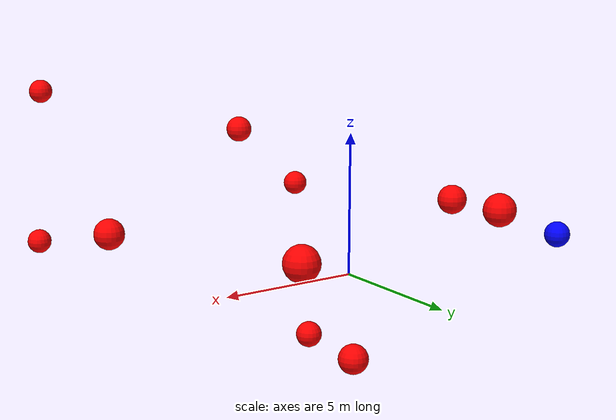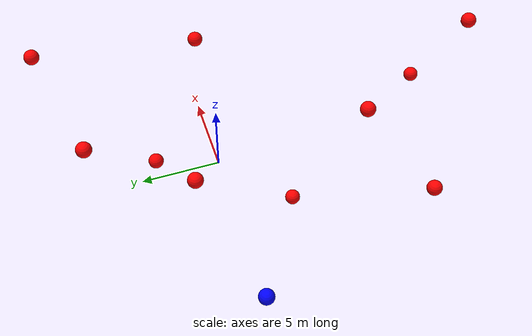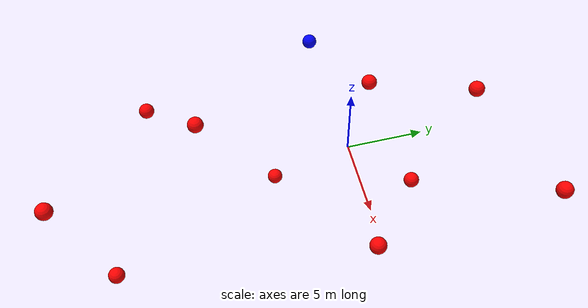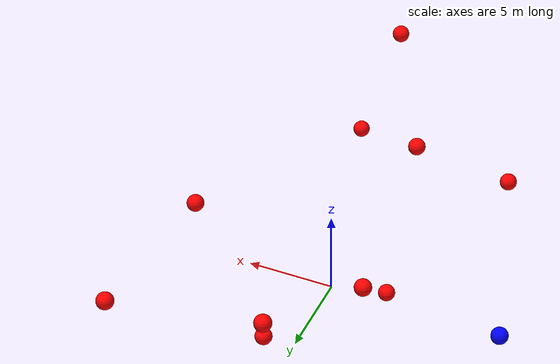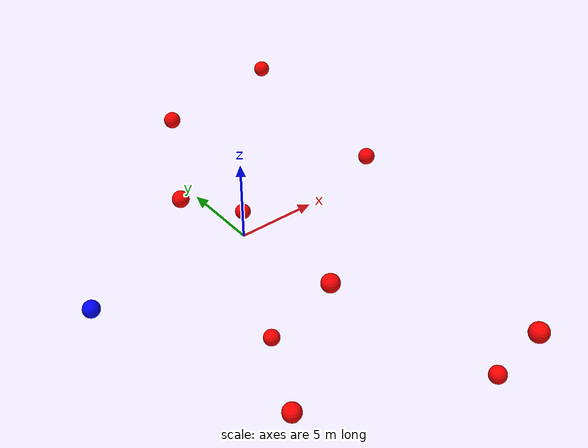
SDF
<?xml version="1.0" ?>
<sdf version="1.8">
    <world name="3d_world">
        <physics name="1ms" type="ode">
            <max_step_size>0.001</max_step_size>
            <real_time_factor>1.0</real_time_factor>
            <real_time_update_rate>1000.0</real_time_update_rate>
        </physics>
        <gravity>0 0 0</gravity>

        <plugin
            filename="gz-sim-physics-system"
            name="gz::sim::v8::systems::Physics">
        </plugin>
        <plugin
            filename="libignition-gazebo-user-commands-system.so"
            name="ignition::gazebo::systems::UserCommands">
        </plugin>
        <plugin
            filename="gz-sim-scene-broadcaster-system"
            name="gz::sim::systems::SceneBroadcaster">
        </plugin>
        <plugin
            filename="gz-sim-sensors-system"
            name="gz::sim::systems::Sensors">
            <render_engine>ogre2</render_engine>
        </plugin>

        <light type="directional" name="sun">
            <cast_shadows>true</cast_shadows>
            <pose>0 0 10 0 0 0</pose>
            <diffuse>0.8 0.8 0.8 1</diffuse>
            <specular>0.2 0.2 0.2 1</specular>
            <attenuation>
                <range>1000</range>
                <constant>0.9</constant>
                <linear>0.01</linear>
                <quadratic>0.001</quadratic>
            </attenuation>
            <direction>-0.5 0.1 -0.9</direction>
        </light>

        <!-- AGENTE -->
        <model name='agente' canonical_link='chassis'>
            <pose relative_to='world'>-10.0 0 0.0 0 0 0</pose>
            <link name='chassis'>
                <pose relative_to='__model__'>0.0 0 0.0 0 0 0</pose>
                <inertial>
                    <mass>1.14395</mass>
                    <inertia>
                        <ixx>0.095329</ixx>
                        <ixy>0</ixy>
                        <ixz>0</ixz>
                        <iyy>0.381317</iyy>
                        <iyz>0</iyz>
                        <izz>0.476646</izz>
                    </inertia>
                </inertial>
                <visual name='visual'>
                    <geometry>
                        <sphere>
                            <radius>0.5</radius>
                        </sphere>
                    </geometry>
                    <material>
                        <ambient>0.0 0.0 1.0 1</ambient>
                        <diffuse>0.0 0.0 1.0 1</diffuse>
                        <specular>0.0 0.0 1.0 1</specular>
                    </material>
                </visual>
                <collision name='collision'>
                    <geometry>
                        <sphere>
                            <radius>0.5</radius>
                        </sphere>
                    </geometry>
                </collision>
                <enable_gravity>false</enable_gravity>
            </link>

            <link name='lidar_link'>
                <pose relative_to='chassis'>0.0 0 0.1 0 0 0</pose>
                <inertial>
                    <mass>0.1</mass>
                    <inertia>
                        <ixx>0.000166667</ixx>
                        <iyy>0.000166667</iyy>
                        <izz>0.000166667</izz>
                    </inertia>
                </inertial>
                <collision name='collision'>
                    <geometry>
                        <cylinder>
                            <radius>0.05</radius>
                            <length>0.1</length>
                        </cylinder>
                    </geometry>
                </collision>
                <visual name='visual'>
                    <geometry>
                        <cylinder>
                            <radius>0.05</radius>
                            <length>0.1</length>
                        </cylinder>
                    </geometry>
                    <material>
                        <ambient>0.0 1.0 0.0 1</ambient>
                        <diffuse>0.0 1.0 0.0 1</diffuse>
                        <specular>0.0 1.0 0.0 1</specular>
                    </material>
                </visual>
                <sensor name="lidar" type="gpu_lidar">
                    <topic>scan</topic>
                    <update_rate>10</update_rate>
                    <lidar>
                        <scan>
                            <horizontal>
                                <samples>5000</samples>
                                <resolution>1</resolution>
                                <min_angle>-3.14159</min_angle>
                                <max_angle>3.14159</max_angle>
                            </horizontal>
                        </scan>
                        <range>
                            <min>0.1</min>
                            <max>10.0</max>
                            <resolution>0.01</resolution>
                        </range>
                    </lidar>
                    <visualize>true</visualize>
                    <always_on>true</always_on>
                    <update_rate>10</update_rate>
                    <pose_frame>lidar</pose_frame>
                </sensor>
                <enable_gravity>false</enable_gravity>
            </link>

            <joint name="lidar_joint" type="fixed">
                <parent>chassis</parent>
                <child>lidar_link</child>
            </joint>

            <plugin
                filename="ignition-gazebo-joint-state-publisher-system"
                name="ignition::gazebo::systems::JointStatePublisher">
            </plugin>
            <plugin
                filename="ignition-gazebo-odometry-publisher-system"
                name="ignition::gazebo::systems::OdometryPublisher">
                <dimensions>3</dimensions>
            </plugin>
            <plugin
                filename="ignition-gazebo-velocity-control-system"
                name="ignition::gazebo::systems::VelocityControl">
                <initial_linear>0.0 0 0</initial_linear>
                <initial_angular>0 0 0.0</initial_angular>
            </plugin>
            <plugin
                filename="libignition-gazebo-pose-publisher-system.so"
                name="ignition::gazebo::systems::PosePublisher">
                <topic>/agente/pose</topic>
                <frame_id>agente</frame_id>
                <update_rate>30</update_rate>
            </plugin>
        </model>

        <!-- OBSTACLE 1 -->
        <model name='obstacle_1' canonical_link='obstacle'>
            <static>false</static>
            <pose relative_to='world'>8.82 9.90 4.08 0 0 0</pose>
            <link name='obstacle'>
                <pose relative_to='__model__'>0.0 0 0.0 0 0 0</pose>
                <visual name='visual'>
                    <geometry>
                        <sphere>
                            <radius>0.50</radius>
                        </sphere>
                    </geometry>
                    <material>
                        <ambient>1.0 0.0 0.0 1</ambient>
                        <diffuse>1.0 0.0 0.0 1</diffuse>
                        <specular>1.0 0.0 0.0 1</specular>
                    </material>
                </visual>
                <collision name='collision'>
                    <geometry>
                        <sphere>
                            <radius>0.50</radius>
                        </sphere>
                    </geometry>
                </collision>
                <enable_gravity>false</enable_gravity>
            </link>

            <plugin
                filename="ignition-gazebo-velocity-control-system"
                name="ignition::gazebo::systems::VelocityControl">
                <initial_linear>-1.52 -1.21 -0.50</initial_linear>
                <initial_angular>0 0 0</initial_angular>
            </plugin>

            <plugin
                filename="ignition-gazebo-odometry-publisher-system"
                name="ignition::gazebo::systems::OdometryPublisher">
                <dimensions>3</dimensions>
            </plugin>
        </model>

        <!-- OBSTACLE 2 -->
        <model name='obstacle_2' canonical_link='obstacle'>
            <static>false</static>
            <pose relative_to='world'>-1.36 -9.38 3.60 0 0 0</pose>
            <link name='obstacle'>
                <pose relative_to='__model__'>0.0 0 0.0 0 0 0</pose>
                <visual name='visual'>
                    <geometry>
                        <sphere>
                            <radius>0.50</radius>
                        </sphere>
                    </geometry>
                    <material>
                        <ambient>1.0 0.0 0.0 1</ambient>
                        <diffuse>1.0 0.0 0.0 1</diffuse>
                        <specular>1.0 0.0 0.0 1</specular>
                    </material>
                </visual>
                <collision name='collision'>
                    <geometry>
                        <sphere>
                            <radius>0.50</radius>
                        </sphere>
                    </geometry>
                </collision>
                <enable_gravity>false</enable_gravity>
            </link>

            <plugin
                filename="ignition-gazebo-velocity-control-system"
                name="ignition::gazebo::systems::VelocityControl">
                <initial_linear>0.10 1.86 -0.72</initial_linear>
                <initial_angular>0 0 0</initial_angular>
            </plugin>

            <plugin
                filename="ignition-gazebo-odometry-publisher-system"
                name="ignition::gazebo::systems::OdometryPublisher">
                <dimensions>3</dimensions>
            </plugin>
        </model>

        <!-- OBSTACLE 3 -->
        <model name='obstacle_3' canonical_link='obstacle'>
            <static>false</static>
            <pose relative_to='world'>-2.77 2.14 2.74 0 0 0</pose>
            <link name='obstacle'>
                <pose relative_to='__model__'>0.0 0 0.0 0 0 0</pose>
                <visual name='visual'>
                    <geometry>
                        <sphere>
                            <radius>0.50</radius>
                        </sphere>
                    </geometry>
                    <material>
                        <ambient>1.0 0.0 0.0 1</ambient>
                        <diffuse>1.0 0.0 0.0 1</diffuse>
                        <specular>1.0 0.0 0.0 1</specular>
                    </material>
                </visual>
                <collision name='collision'>
                    <geometry>
                        <sphere>
                            <radius>0.50</radius>
                        </sphere>
                    </geometry>
                </collision>
                <enable_gravity>false</enable_gravity>
            </link>

            <plugin
                filename="ignition-gazebo-velocity-control-system"
                name="ignition::gazebo::systems::VelocityControl">
                <initial_linear>1.28 -0.36 -0.46</initial_linear>
                <initial_angular>0 0 0</initial_angular>
            </plugin>

            <plugin
                filename="ignition-gazebo-odometry-publisher-system"
                name="ignition::gazebo::systems::OdometryPublisher">
                <dimensions>3</dimensions>
            </plugin>
        </model>

        <!-- OBSTACLE 4 -->
        <model name='obstacle_4' canonical_link='obstacle'>
            <static>false</static>
            <pose relative_to='world'>4.67 -15.76 -1.58 0 0 0</pose>
            <link name='obstacle'>
                <pose relative_to='__model__'>0.0 0 0.0 0 0 0</pose>
                <visual name='visual'>
                    <geometry>
                        <sphere>
                            <radius>0.50</radius>
                        </sphere>
                    </geometry>
                    <material>
                        <ambient>1.0 0.0 0.0 1</ambient>
                        <diffuse>1.0 0.0 0.0 1</diffuse>
                        <specular>1.0 0.0 0.0 1</specular>
                    </material>
                </visual>
                <collision name='collision'>
                    <geometry>
                        <sphere>
                            <radius>0.50</radius>
                        </sphere>
                    </geometry>
                </collision>
                <enable_gravity>false</enable_gravity>
            </link>

            <plugin
                filename="ignition-gazebo-velocity-control-system"
                name="ignition::gazebo::systems::VelocityControl">
                <initial_linear>-0.95 1.75 0.18</initial_linear>
                <initial_angular>0 0 0</initial_angular>
            </plugin>

            <plugin
                filename="ignition-gazebo-odometry-publisher-system"
                name="ignition::gazebo::systems::OdometryPublisher">
                <dimensions>3</dimensions>
            </plugin>
        </model>

        <!-- OBSTACLE 5 -->
        <model name='obstacle_5' canonical_link='obstacle'>
            <static>false</static>
            <pose relative_to='world'>-6.10 -12.32 0.28 0 0 0</pose>
            <link name='obstacle'>
                <pose relative_to='__model__'>0.0 0 0.0 0 0 0</pose>
                <visual name='visual'>
                    <geometry>
                        <sphere>
                            <radius>0.50</radius>
                        </sphere>
                    </geometry>
                    <material>
                        <ambient>1.0 0.0 0.0 1</ambient>
                        <diffuse>1.0 0.0 0.0 1</diffuse>
                        <specular>1.0 0.0 0.0 1</specular>
                    </material>
                </visual>
                <collision name='collision'>
                    <geometry>
                        <sphere>
                            <radius>0.50</radius>
                        </sphere>
                    </geometry>
                </collision>
                <enable_gravity>false</enable_gravity>
            </link>

            <plugin
                filename="ignition-gazebo-velocity-control-system"
                name="ignition::gazebo::systems::VelocityControl">
                <initial_linear>0.92 1.77 -0.04</initial_linear>
                <initial_angular>0 0 0</initial_angular>
            </plugin>

            <plugin
                filename="ignition-gazebo-odometry-publisher-system"
                name="ignition::gazebo::systems::OdometryPublisher">
                <dimensions>3</dimensions>
            </plugin>
        </model>

        <!-- OBSTACLE 6 -->
        <model name='obstacle_6' canonical_link='obstacle'>
            <static>false</static>
            <pose relative_to='world'>0.48 8.05 3.98 0 0 0</pose>
            <link name='obstacle'>
                <pose relative_to='__model__'>0.0 0 0.0 0 0 0</pose>
                <visual name='visual'>
                    <geometry>
                        <sphere>
                            <radius>0.50</radius>
                        </sphere>
                    </geometry>
                    <material>
                        <ambient>1.0 0.0 0.0 1</ambient>
                        <diffuse>1.0 0.0 0.0 1</diffuse>
                        <specular>1.0 0.0 0.0 1</specular>
                    </material>
                </visual>
                <collision name='collision'>
                    <geometry>
                        <sphere>
                            <radius>0.50</radius>
                        </sphere>
                    </geometry>
                </collision>
                <enable_gravity>false</enable_gravity>
            </link>

            <plugin
                filename="ignition-gazebo-velocity-control-system"
                name="ignition::gazebo::systems::VelocityControl">
                <initial_linear>0.97 -1.18 -0.58</initial_linear>
                <initial_angular>0 0 0</initial_angular>
            </plugin>

            <plugin
                filename="ignition-gazebo-odometry-publisher-system"
                name="ignition::gazebo::systems::OdometryPublisher">
                <dimensions>3</dimensions>
            </plugin>
        </model>

        <!-- OBSTACLE 7 -->
        <model name='obstacle_7' canonical_link='obstacle'>
            <static>false</static>
            <pose relative_to='world'>2.52 3.68 -1.54 0 0 0</pose>
            <link name='obstacle'>
                <pose relative_to='__model__'>0.0 0 0.0 0 0 0</pose>
                <visual name='visual'>
                    <geometry>
                        <sphere>
                            <radius>0.50</radius>
                        </sphere>
                    </geometry>
                    <material>
                        <ambient>1.0 0.0 0.0 1</ambient>
                        <diffuse>1.0 0.0 0.0 1</diffuse>
                        <specular>1.0 0.0 0.0 1</specular>
                    </material>
                </visual>
                <collision name='collision'>
                    <geometry>
                        <sphere>
                            <radius>0.50</radius>
                        </sphere>
                    </geometry>
                </collision>
                <enable_gravity>false</enable_gravity>
            </link>

            <plugin
                filename="ignition-gazebo-velocity-control-system"
                name="ignition::gazebo::systems::VelocityControl">
                <initial_linear>0.38 -0.62 0.26</initial_linear>
                <initial_angular>0 0 0</initial_angular>
            </plugin>

            <plugin
                filename="ignition-gazebo-odometry-publisher-system"
                name="ignition::gazebo::systems::OdometryPublisher">
                <dimensions>3</dimensions>
            </plugin>
        </model>

        <!-- OBSTACLE 8 -->
        <model name='obstacle_8' canonical_link='obstacle'>
            <static>false</static>
            <pose relative_to='world'>8.78 -0.91 2.51 0 0 0</pose>
            <link name='obstacle'>
                <pose relative_to='__model__'>0.0 0 0.0 0 0 0</pose>
                <visual name='visual'>
                    <geometry>
                        <sphere>
                            <radius>0.50</radius>
                        </sphere>
                    </geometry>
                    <material>
                        <ambient>1.0 0.0 0.0 1</ambient>
                        <diffuse>1.0 0.0 0.0 1</diffuse>
                        <specular>1.0 0.0 0.0 1</specular>
                    </material>
                </visual>
                <collision name='collision'>
                    <geometry>
                        <sphere>
                            <radius>0.50</radius>
                        </sphere>
                    </geometry>
                </collision>
                <enable_gravity>false</enable_gravity>
            </link>

            <plugin
                filename="ignition-gazebo-velocity-control-system"
                name="ignition::gazebo::systems::VelocityControl">
                <initial_linear>-0.94 0.17 -0.46</initial_linear>
                <initial_angular>0 0 0</initial_angular>
            </plugin>

            <plugin
                filename="ignition-gazebo-odometry-publisher-system"
                name="ignition::gazebo::systems::OdometryPublisher">
                <dimensions>3</dimensions>
            </plugin>
        </model>

        <!-- OBSTACLE 9 -->
        <model name='obstacle_9' canonical_link='obstacle'>
            <static>false</static>
            <pose relative_to='world'>-1.54 -4.65 -3.78 0 0 0</pose>
            <link name='obstacle'>
                <pose relative_to='__model__'>0.0 0 0.0 0 0 0</pose>
                <visual name='visual'>
                    <geometry>
                        <sphere>
                            <radius>0.50</radius>
                        </sphere>
                    </geometry>
                    <material>
                        <ambient>1.0 0.0 0.0 1</ambient>
                        <diffuse>1.0 0.0 0.0 1</diffuse>
                        <specular>1.0 0.0 0.0 1</specular>
                    </material>
                </visual>
                <collision name='collision'>
                    <geometry>
                        <sphere>
                            <radius>0.50</radius>
                        </sphere>
                    </geometry>
                </collision>
                <enable_gravity>false</enable_gravity>
            </link>

            <plugin
                filename="ignition-gazebo-velocity-control-system"
                name="ignition::gazebo::systems::VelocityControl">
                <initial_linear>1.02 0.82 0.66</initial_linear>
                <initial_angular>0 0 0</initial_angular>
            </plugin>

            <plugin
                filename="ignition-gazebo-odometry-publisher-system"
                name="ignition::gazebo::systems::OdometryPublisher">
                <dimensions>3</dimensions>
            </plugin>
        </model>

        <!-- OBSTACLE 10 -->
        <model name='obstacle_10' canonical_link='obstacle'>
            <static>false</static>
            <pose relative_to='world'>3.21 -18.33 4.38 0 0 0</pose>
            <link name='obstacle'>
                <pose relative_to='__model__'>0.0 0 0.0 0 0 0</pose>
                <visual name='visual'>
                    <geometry>
                        <sphere>
                            <radius>0.50</radius>
                        </sphere>
                    </geometry>
                    <material>
                        <ambient>1.0 0.0 0.0 1</ambient>
                        <diffuse>1.0 0.0 0.0 1</diffuse>
                        <specular>1.0 0.0 0.0 1</specular>
                    </material>
                </visual>
                <collision name='collision'>
                    <geometry>
                        <sphere>
                            <radius>0.50</radius>
                        </sphere>
                    </geometry>
                </collision>
                <enable_gravity>false</enable_gravity>
            </link>

            <plugin
                filename="ignition-gazebo-velocity-control-system"
                name="ignition::gazebo::systems::VelocityControl">
                <initial_linear>-0.32 1.92 -0.46</initial_linear>
                <initial_angular>0 0 0</initial_angular>
            </plugin>

            <plugin
                filename="ignition-gazebo-odometry-publisher-system"
                name="ignition::gazebo::systems::OdometryPublisher">
                <dimensions>3</dimensions>
            </plugin>
        </model>

    </world>
</sdf>
